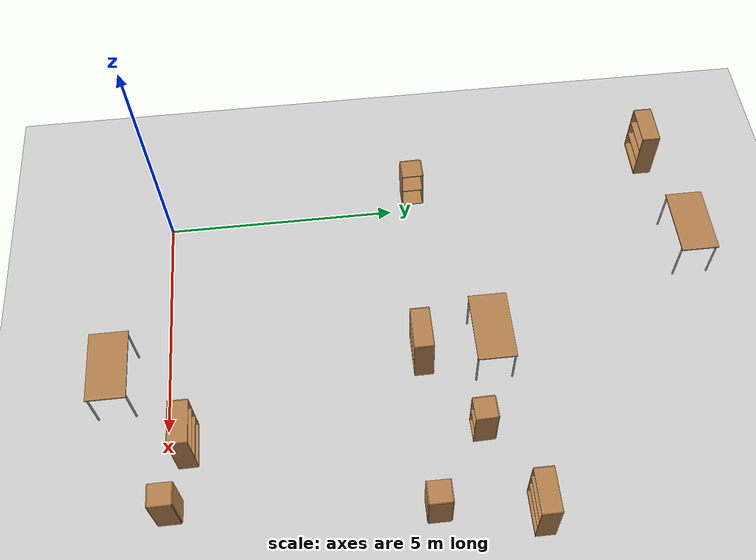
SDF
<sdf version="1.7">
 <world name="default">
  <model name="ground_plane">
   <static>1</static>
   <link name="link">
    <collision name="collision">
     <geometry><plane><normal>0 0 1</normal><size>100 100</size></plane></geometry>
     <surface><friction><ode><mu>100</mu><mu2>50</mu2></ode></friction></surface>
    </collision>
    <visual name="visual">
     <cast_shadows>0</cast_shadows>
     <geometry><plane><normal>0 0 1</normal><size>100 100</size></plane></geometry>
     <material>
      <script><uri>file://media/materials/scripts/gazebo.material</uri><name>Gazebo/Grey</name></script>
     </material>
    </visual>
   </link>
  </model>
  <model name="bookshelf">
   <static>1</static>
   <link name="link">
    <inertial><mass>1</mass></inertial>
    <collision name="back">
     <pose>0 0.005 0.6 0 -0 0</pose>
     <geometry><box><size>0.9 0.01 1.2</size></box></geometry>
    </collision>
    <visual name="visual1">
     <pose>0 0.005 0.6 0 -0 0</pose>
     <geometry><box><size>0.9 0.01 1.2</size></box></geometry>
     <material>
      <script><uri>file://media/materials/scripts/gazebo.material</uri><name>Gazebo/Wood</name></script>
     </material>
    </visual>
    <collision name="left_side">
     <pose>0.45 -0.195 0.6 0 -0 0</pose>
     <geometry><box><size>0.02 0.4 1.2</size></box></geometry>
    </collision>
    <visual name="visual2">
     <pose>0.45 -0.195 0.6 0 -0 0</pose>
     <geometry><box><size>0.02 0.4 1.2</size></box></geometry>
     <material>
      <script><uri>file://media/materials/scripts/gazebo.material</uri><name>Gazebo/Wood</name></script>
     </material>
    </visual>
    <collision name="right_side">
     <pose>-0.45 -0.195 0.6 0 -0 0</pose>
     <geometry><box><size>0.02 0.4 1.2</size></box></geometry>
    </collision>
    <visual name="visual3">
     <pose>-0.45 -0.195 0.6 0 -0 0</pose>
     <geometry><box><size>0.02 0.4 1.2</size></box></geometry>
     <material>
      <script><uri>file://media/materials/scripts/gazebo.material</uri><name>Gazebo/Wood</name></script>
     </material>
    </visual>
    <collision name="bottom">
     <pose>0 -0.195 0.03 0 -0 0</pose>
     <geometry><box><size>0.88 0.4 0.06</size></box></geometry>
    </collision>
    <visual name="visual4">
     <pose>0 -0.195 0.03 0 -0 0</pose>
     <geometry><box><size>0.88 0.4 0.06</size></box></geometry>
     <material>
      <script><uri>file://media/materials/scripts/gazebo.material</uri><name>Gazebo/Wood</name></script>
     </material>
    </visual>
    <collision name="top">
     <pose>0 -0.195 1.19 0 -0 0</pose>
     <geometry><box><size>0.88 0.4 0.02</size></box></geometry>
    </collision>
    <visual name="visual5">
     <pose>0 -0.195 1.19 0 -0 0</pose>
     <geometry><box><size>0.88 0.4 0.02</size></box></geometry>
     <material>
      <script><uri>file://media/materials/scripts/gazebo.material</uri><name>Gazebo/Wood</name></script>
     </material>
    </visual>
    <collision name="low_shelf">
     <pose>0 -0.195 0.43 0 -0 0</pose>
     <geometry><box><size>0.88 0.4 0.02</size></box></geometry>
    </collision>
    <visual name="visual6">
     <pose>0 -0.195 0.43 0 -0 0</pose>
     <geometry><box><size>0.88 0.4 0.02</size></box></geometry>
     <material>
      <script><uri>file://media/materials/scripts/gazebo.material</uri><name>Gazebo/Wood</name></script>
     </material>
    </visual>
    <collision name="high_shelf">
     <pose>0 -0.195 0.8 0 -0 0</pose>
     <geometry><box><size>0.88 0.4 0.02</size></box></geometry>
    </collision>
    <visual name="visual7">
     <pose>0 -0.195 0.8 0 -0 0</pose>
     <geometry><box><size>0.88 0.4 0.02</size></box></geometry>
     <material>
      <script><uri>file://media/materials/scripts/gazebo.material</uri><name>Gazebo/Wood</name></script>
     </material>
    </visual>
   </link>
   <pose>7.47775 7.35684 0 0 -0 0</pose>
  </model>
  <model name="cabinet_0">
   <static>1</static>
   <link name="cabinet_bottom_plate">
    <inertial>
     <pose>0 0 -1 0 -0 0</pose>
     <inertia><ixx>2.05</ixx><ixy>0</ixy><ixz>0</ixz><iyy>2.05</iyy><iyz>0</iyz><izz>2.05</izz></inertia>
     <mass>25</mass>
    </inertial>
    <collision name="cabinet_bottom_plate_geom">
     <pose>0 0 0.01 0 -0 0</pose>
     <geometry><box><size>0.45 0.45 0.02</size></box></geometry>
    </collision>
    <visual name="cabinet_bottom_plate_geom_visual">
     <pose>0 0 0.01 0 -0 0</pose>
     <geometry><box><size>0.45 0.45 0.02</size></box></geometry>
     <material>
      <script><uri>file://media/materials/scripts/gazebo.material</uri><name>Gazebo/Wood</name></script>
     </material>
    </visual>
    <collision name="cabinet_bottom_plate_geom_cabinet_back_plate">
     <pose>0.235 0 0.51 0 -0 0</pose>
     <geometry><box><size>0.02 0.45 1.02</size></box></geometry>
    </collision>
    <visual name="cabinet_bottom_plate_geom_cabinet_back_plate_visual">
     <pose>0.235 0 0.51 0 -0 0</pose>
     <geometry><box><size>0.02 0.45 1.02</size></box></geometry>
     <material>
      <script><uri>file://media/materials/scripts/gazebo.material</uri><name>Gazebo/Wood</name></script>
     </material>
    </visual>
    <collision name="cabinet_bottom_plate_geom_cabinet_left_plate">
     <pose>0 0.235 0.51 0 -0 0</pose>
     <geometry><box><size>0.45 0.02 1.02</size></box></geometry>
    </collision>
    <visual name="cabinet_bottom_plate_geom_cabinet_left_plate_visual">
     <pose>0 0.235 0.51 0 -0 0</pose>
     <geometry><box><size>0.45 0.02 1.02</size></box></geometry>
     <material>
      <script><uri>file://media/materials/scripts/gazebo.material</uri><name>Gazebo/Wood</name></script>
     </material>
    </visual>
    <collision name="cabinet_bottom_plate_geom_cabinet_middle_plate">
     <pose>0 0 0.51 0 -0 0</pose>
     <geometry><box><size>0.45 0.45 0.02</size></box></geometry>
    </collision>
    <visual name="cabinet_bottom_plate_geom_cabinet_middle_plate_visual">
     <pose>0 0 0.51 0 -0 0</pose>
     <geometry><box><size>0.45 0.45 0.02</size></box></geometry>
     <material>
      <script><uri>file://media/materials/scripts/gazebo.material</uri><name>Gazebo/Wood</name></script>
     </material>
    </visual>
    <collision name="cabinet_bottom_plate_geom_cabinet_right_plate">
     <pose>0 -0.235 0.51 0 -0 0</pose>
     <geometry><box><size>0.45 0.02 1.02</size></box></geometry>
    </collision>
    <visual name="cabinet_bottom_plate_geom_cabinet_right_plate_visual">
     <pose>0 -0.235 0.51 0 -0 0</pose>
     <geometry><box><size>0.45 0.02 1.02</size></box></geometry>
     <material>
      <script><uri>file://media/materials/scripts/gazebo.material</uri><name>Gazebo/Wood</name></script>
     </material>
    </visual>
    <collision name="cabinet_bottom_plate_geom_cabinet_top_plate">
     <pose>0 0 1.01 0 -0 0</pose>
     <geometry><box><size>0.45 0.45 0.02</size></box></geometry>
    </collision>
    <visual name="cabinet_bottom_plate_geom_cabinet_top_plate_visual">
     <pose>0 0 1.01 0 -0 0</pose>
     <geometry><box><size>0.45 0.45 0.02</size></box></geometry>
     <material>
      <script><uri>file://media/materials/scripts/gazebo.material</uri><name>Gazebo/Wood</name></script>
     </material>
    </visual>
   </link>
   <pose>7.21592 5.20257 0 0 -0 0</pose>
  </model>
  <model name="bookshelf_2">
   <static>1</static>
   <link name="link">
    <inertial><mass>1</mass></inertial>
    <collision name="back">
     <pose>0 0.005 0.6 0 -0 0</pose>
     <geometry><box><size>0.9 0.01 1.2</size></box></geometry>
    </collision>
    <visual name="visual1">
     <pose>0 0.005 0.6 0 -0 0</pose>
     <geometry><box><size>0.9 0.01 1.2</size></box></geometry>
     <material>
      <script><uri>file://media/materials/scripts/gazebo.material</uri><name>Gazebo/Wood</name></script>
     </material>
    </visual>
    <collision name="left_side">
     <pose>0.45 -0.195 0.6 0 -0 0</pose>
     <geometry><box><size>0.02 0.4 1.2</size></box></geometry>
    </collision>
    <visual name="visual2">
     <pose>0.45 -0.195 0.6 0 -0 0</pose>
     <geometry><box><size>0.02 0.4 1.2</size></box></geometry>
     <material>
      <script><uri>file://media/materials/scripts/gazebo.material</uri><name>Gazebo/Wood</name></script>
     </material>
    </visual>
    <collision name="right_side">
     <pose>-0.45 -0.195 0.6 0 -0 0</pose>
     <geometry><box><size>0.02 0.4 1.2</size></box></geometry>
    </collision>
    <visual name="visual3">
     <pose>-0.45 -0.195 0.6 0 -0 0</pose>
     <geometry><box><size>0.02 0.4 1.2</size></box></geometry>
     <material>
      <script><uri>file://media/materials/scripts/gazebo.material</uri><name>Gazebo/Wood</name></script>
     </material>
    </visual>
    <collision name="bottom">
     <pose>0 -0.195 0.03 0 -0 0</pose>
     <geometry><box><size>0.88 0.4 0.06</size></box></geometry>
    </collision>
    <visual name="visual4">
     <pose>0 -0.195 0.03 0 -0 0</pose>
     <geometry><box><size>0.88 0.4 0.06</size></box></geometry>
     <material>
      <script><uri>file://media/materials/scripts/gazebo.material</uri><name>Gazebo/Wood</name></script>
     </material>
    </visual>
    <collision name="top">
     <pose>0 -0.195 1.19 0 -0 0</pose>
     <geometry><box><size>0.88 0.4 0.02</size></box></geometry>
    </collision>
    <visual name="visual5">
     <pose>0 -0.195 1.19 0 -0 0</pose>
     <geometry><box><size>0.88 0.4 0.02</size></box></geometry>
     <material>
      <script><uri>file://media/materials/scripts/gazebo.material</uri><name>Gazebo/Wood</name></script>
     </material>
    </visual>
    <collision name="low_shelf">
     <pose>0 -0.195 0.43 0 -0 0</pose>
     <geometry><box><size>0.88 0.4 0.02</size></box></geometry>
    </collision>
    <visual name="visual6">
     <pose>0 -0.195 0.43 0 -0 0</pose>
     <geometry><box><size>0.88 0.4 0.02</size></box></geometry>
     <material>
      <script><uri>file://media/materials/scripts/gazebo.material</uri><name>Gazebo/Wood</name></script>
     </material>
    </visual>
    <collision name="high_shelf">
     <pose>0 -0.195 0.8 0 -0 0</pose>
     <geometry><box><size>0.88 0.4 0.02</size></box></geometry>
    </collision>
    <visual name="visual7">
     <pose>0 -0.195 0.8 0 -0 0</pose>
     <geometry><box><size>0.88 0.4 0.02</size></box></geometry>
     <material>
      <script><uri>file://media/materials/scripts/gazebo.material</uri><name>Gazebo/Wood</name></script>
     </material>
    </visual>
   </link>
   <pose>-0.951179 11.2244 0 0 -0 0</pose>
  </model>
  <model name="table_1">
   <static>1</static>
   <link name="link">
    <collision name="surface">
     <pose>0 0 1 0 -0 0</pose>
     <geometry><box><size>1.5 0.8 0.03</size></box></geometry>
     <surface><friction><ode><mu>0.6</mu><mu2>0.6</mu2></ode></friction></surface>
    </collision>
    <visual name="visual1">
     <pose>0 0 1 0 -0 0</pose>
     <geometry><box><size>1.5 0.8 0.03</size></box></geometry>
     <material>
      <script><uri>file://media/materials/scripts/gazebo.material</uri><name>Gazebo/Wood</name></script>
     </material>
    </visual>
    <collision name="front_left_leg">
     <pose>0.68 0.38 0.5 0 -0 0</pose>
     <geometry><cylinder><radius>0.02</radius><length>1</length></cylinder></geometry>
    </collision>
    <visual name="front_left_leg">
     <pose>0.68 0.38 0.5 0 -0 0</pose>
     <geometry><cylinder><radius>0.02</radius><length>1</length></cylinder></geometry>
     <material>
      <script><uri>file://media/materials/scripts/gazebo.material</uri><name>Gazebo/Grey</name></script>
     </material>
    </visual>
    <collision name="front_right_leg">
     <pose>0.68 -0.38 0.5 0 -0 0</pose>
     <geometry><cylinder><radius>0.02</radius><length>1</length></cylinder></geometry>
    </collision>
    <visual name="front_right_leg">
     <pose>0.68 -0.38 0.5 0 -0 0</pose>
     <geometry><cylinder><radius>0.02</radius><length>1</length></cylinder></geometry>
     <material>
      <script><uri>file://media/materials/scripts/gazebo.material</uri><name>Gazebo/Grey</name></script>
     </material>
    </visual>
    <collision name="back_right_leg">
     <pose>-0.68 -0.38 0.5 0 -0 0</pose>
     <geometry><cylinder><radius>0.02</radius><length>1</length></cylinder></geometry>
    </collision>
    <visual name="back_right_leg">
     <pose>-0.68 -0.38 0.5 0 -0 0</pose>
     <geometry><cylinder><radius>0.02</radius><length>1</length></cylinder></geometry>
     <material>
      <script><uri>file://media/materials/scripts/gazebo.material</uri><name>Gazebo/Grey</name></script>
     </material>
    </visual>
    <collision name="back_left_leg">
     <pose>-0.68 0.38 0.5 0 -0 0</pose>
     <geometry><cylinder><radius>0.02</radius><length>1</length></cylinder></geometry>
    </collision>
    <visual name="back_left_leg">
     <pose>-0.68 0.38 0.5 0 -0 0</pose>
     <geometry><cylinder><radius>0.02</radius><length>1</length></cylinder></geometry>
     <material>
      <script><uri>file://media/materials/scripts/gazebo.material</uri><name>Gazebo/Grey</name></script>
     </material>
    </visual>
   </link>
   <pose>1.69778 11.4322 0 0 -0 0</pose>
  </model>
  <model name="bookshelf_3">
   <static>1</static>
   <link name="link">
    <inertial><mass>1</mass></inertial>
    <collision name="back">
     <pose>0 0.005 0.6 0 -0 0</pose>
     <geometry><box><size>0.9 0.01 1.2</size></box></geometry>
    </collision>
    <visual name="visual1">
     <pose>0 0.005 0.6 0 -0 0</pose>
     <geometry><box><size>0.9 0.01 1.2</size></box></geometry>
     <material>
      <script><uri>file://media/materials/scripts/gazebo.material</uri><name>Gazebo/Wood</name></script>
     </material>
    </visual>
    <collision name="left_side">
     <pose>0.45 -0.195 0.6 0 -0 0</pose>
     <geometry><box><size>0.02 0.4 1.2</size></box></geometry>
    </collision>
    <visual name="visual2">
     <pose>0.45 -0.195 0.6 0 -0 0</pose>
     <geometry><box><size>0.02 0.4 1.2</size></box></geometry>
     <material>
      <script><uri>file://media/materials/scripts/gazebo.material</uri><name>Gazebo/Wood</name></script>
     </material>
    </visual>
    <collision name="right_side">
     <pose>-0.45 -0.195 0.6 0 -0 0</pose>
     <geometry><box><size>0.02 0.4 1.2</size></box></geometry>
    </collision>
    <visual name="visual3">
     <pose>-0.45 -0.195 0.6 0 -0 0</pose>
     <geometry><box><size>0.02 0.4 1.2</size></box></geometry>
     <material>
      <script><uri>file://media/materials/scripts/gazebo.material</uri><name>Gazebo/Wood</name></script>
     </material>
    </visual>
    <collision name="bottom">
     <pose>0 -0.195 0.03 0 -0 0</pose>
     <geometry><box><size>0.88 0.4 0.06</size></box></geometry>
    </collision>
    <visual name="visual4">
     <pose>0 -0.195 0.03 0 -0 0</pose>
     <geometry><box><size>0.88 0.4 0.06</size></box></geometry>
     <material>
      <script><uri>file://media/materials/scripts/gazebo.material</uri><name>Gazebo/Wood</name></script>
     </material>
    </visual>
    <collision name="top">
     <pose>0 -0.195 1.19 0 -0 0</pose>
     <geometry><box><size>0.88 0.4 0.02</size></box></geometry>
    </collision>
    <visual name="visual5">
     <pose>0 -0.195 1.19 0 -0 0</pose>
     <geometry><box><size>0.88 0.4 0.02</size></box></geometry>
     <material>
      <script><uri>file://media/materials/scripts/gazebo.material</uri><name>Gazebo/Wood</name></script>
     </material>
    </visual>
    <collision name="low_shelf">
     <pose>0 -0.195 0.43 0 -0 0</pose>
     <geometry><box><size>0.88 0.4 0.02</size></box></geometry>
    </collision>
    <visual name="visual6">
     <pose>0 -0.195 0.43 0 -0 0</pose>
     <geometry><box><size>0.88 0.4 0.02</size></box></geometry>
     <material>
      <script><uri>file://media/materials/scripts/gazebo.material</uri><name>Gazebo/Wood</name></script>
     </material>
    </visual>
    <collision name="high_shelf">
     <pose>0 -0.195 0.8 0 -0 0</pose>
     <geometry><box><size>0.88 0.4 0.02</size></box></geometry>
    </collision>
    <visual name="visual7">
     <pose>0 -0.195 0.8 0 -0 0</pose>
     <geometry><box><size>0.88 0.4 0.02</size></box></geometry>
     <material>
      <script><uri>file://media/materials/scripts/gazebo.material</uri><name>Gazebo/Wood</name></script>
     </material>
    </visual>
   </link>
   <pose>3.81368 5.46157 0 0 -0 0</pose>
  </model>
  <model name="cabinet_2">
   <static>1</static>
   <link name="cabinet_bottom_plate">
    <inertial>
     <pose>0 0 -1 0 -0 0</pose>
     <inertia><ixx>2.05</ixx><ixy>0</ixy><ixz>0</ixz><iyy>2.05</iyy><iyz>0</iyz><izz>2.05</izz></inertia>
     <mass>25</mass>
    </inertial>
    <collision name="cabinet_bottom_plate_geom">
     <pose>0 0 0.01 0 -0 0</pose>
     <geometry><box><size>0.45 0.45 0.02</size></box></geometry>
    </collision>
    <visual name="cabinet_bottom_plate_geom_visual">
     <pose>0 0 0.01 0 -0 0</pose>
     <geometry><box><size>0.45 0.45 0.02</size></box></geometry>
     <material>
      <script><uri>file://media/materials/scripts/gazebo.material</uri><name>Gazebo/Wood</name></script>
     </material>
    </visual>
    <collision name="cabinet_bottom_plate_geom_cabinet_back_plate">
     <pose>0.235 0 0.51 0 -0 0</pose>
     <geometry><box><size>0.02 0.45 1.02</size></box></geometry>
    </collision>
    <visual name="cabinet_bottom_plate_geom_cabinet_back_plate_visual">
     <pose>0.235 0 0.51 0 -0 0</pose>
     <geometry><box><size>0.02 0.45 1.02</size></box></geometry>
     <material>
      <script><uri>file://media/materials/scripts/gazebo.material</uri><name>Gazebo/Wood</name></script>
     </material>
    </visual>
    <collision name="cabinet_bottom_plate_geom_cabinet_left_plate">
     <pose>0 0.235 0.51 0 -0 0</pose>
     <geometry><box><size>0.45 0.02 1.02</size></box></geometry>
    </collision>
    <visual name="cabinet_bottom_plate_geom_cabinet_left_plate_visual">
     <pose>0 0.235 0.51 0 -0 0</pose>
     <geometry><box><size>0.45 0.02 1.02</size></box></geometry>
     <material>
      <script><uri>file://media/materials/scripts/gazebo.material</uri><name>Gazebo/Wood</name></script>
     </material>
    </visual>
    <collision name="cabinet_bottom_plate_geom_cabinet_middle_plate">
     <pose>0 0 0.51 0 -0 0</pose>
     <geometry><box><size>0.45 0.45 0.02</size></box></geometry>
    </collision>
    <visual name="cabinet_bottom_plate_geom_cabinet_middle_plate_visual">
     <pose>0 0 0.51 0 -0 0</pose>
     <geometry><box><size>0.45 0.45 0.02</size></box></geometry>
     <material>
      <script><uri>file://media/materials/scripts/gazebo.material</uri><name>Gazebo/Wood</name></script>
     </material>
    </visual>
    <collision name="cabinet_bottom_plate_geom_cabinet_right_plate">
     <pose>0 -0.235 0.51 0 -0 0</pose>
     <geometry><box><size>0.45 0.02 1.02</size></box></geometry>
    </collision>
    <visual name="cabinet_bottom_plate_geom_cabinet_right_plate_visual">
     <pose>0 -0.235 0.51 0 -0 0</pose>
     <geometry><box><size>0.45 0.02 1.02</size></box></geometry>
     <material>
      <script><uri>file://media/materials/scripts/gazebo.material</uri><name>Gazebo/Wood</name></script>
     </material>
    </visual>
    <collision name="cabinet_bottom_plate_geom_cabinet_top_plate">
     <pose>0 0 1.01 0 -0 0</pose>
     <geometry><box><size>0.45 0.45 0.02</size></box></geometry>
    </collision>
    <visual name="cabinet_bottom_plate_geom_cabinet_top_plate_visual">
     <pose>0 0 1.01 0 -0 0</pose>
     <geometry><box><size>0.45 0.45 0.02</size></box></geometry>
     <material>
      <script><uri>file://media/materials/scripts/gazebo.material</uri><name>Gazebo/Wood</name></script>
     </material>
    </visual>
   </link>
   <pose>5.62956 6.29257 0 0 -0 1.591</pose>
  </model>
  <model name="table_2">
   <static>1</static>
   <link name="link">
    <collision name="surface">
     <pose>0 0 1 0 -0 0</pose>
     <geometry><box><size>1.5 0.8 0.03</size></box></geometry>
     <surface><friction><ode><mu>0.6</mu><mu2>0.6</mu2></ode></friction></surface>
    </collision>
    <visual name="visual1">
     <pose>0 0 1 0 -0 0</pose>
     <geometry><box><size>1.5 0.8 0.03</size></box></geometry>
     <material>
      <script><uri>file://media/materials/scripts/gazebo.material</uri><name>Gazebo/Wood</name></script>
     </material>
    </visual>
    <collision name="front_left_leg">
     <pose>0.68 0.38 0.5 0 -0 0</pose>
     <geometry><cylinder><radius>0.02</radius><length>1</length></cylinder></geometry>
    </collision>
    <visual name="front_left_leg">
     <pose>0.68 0.38 0.5 0 -0 0</pose>
     <geometry><cylinder><radius>0.02</radius><length>1</length></cylinder></geometry>
     <material>
      <script><uri>file://media/materials/scripts/gazebo.material</uri><name>Gazebo/Grey</name></script>
     </material>
    </visual>
    <collision name="front_right_leg">
     <pose>0.68 -0.38 0.5 0 -0 0</pose>
     <geometry><cylinder><radius>0.02</radius><length>1</length></cylinder></geometry>
    </collision>
    <visual name="front_right_leg">
     <pose>0.68 -0.38 0.5 0 -0 0</pose>
     <geometry><cylinder><radius>0.02</radius><length>1</length></cylinder></geometry>
     <material>
      <script><uri>file://media/materials/scripts/gazebo.material</uri><name>Gazebo/Grey</name></script>
     </material>
    </visual>
    <collision name="back_right_leg">
     <pose>-0.68 -0.38 0.5 0 -0 0</pose>
     <geometry><cylinder><radius>0.02</radius><length>1</length></cylinder></geometry>
    </collision>
    <visual name="back_right_leg">
     <pose>-0.68 -0.38 0.5 0 -0 0</pose>
     <geometry><cylinder><radius>0.02</radius><length>1</length></cylinder></geometry>
     <material>
      <script><uri>file://media/materials/scripts/gazebo.material</uri><name>Gazebo/Grey</name></script>
     </material>
    </visual>
    <collision name="back_left_leg">
     <pose>-0.68 0.38 0.5 0 -0 0</pose>
     <geometry><cylinder><radius>0.02</radius><length>1</length></cylinder></geometry>
    </collision>
    <visual name="back_left_leg">
     <pose>-0.68 0.38 0.5 0 -0 0</pose>
     <geometry><cylinder><radius>0.02</radius><length>1</length></cylinder></geometry>
     <material>
      <script><uri>file://media/materials/scripts/gazebo.material</uri><name>Gazebo/Grey</name></script>
     </material>
    </visual>
   </link>
   <pose>3.82604 6.71224 0 0 -0 0</pose>
  </model>
  <model name="cabinet_3">
   <static>1</static>
   <link name="cabinet_bottom_plate">
    <inertial>
     <pose>0 0 -1 0 -0 0</pose>
     <inertia><ixx>2.05</ixx><ixy>0</ixy><ixz>0</ixz><iyy>2.05</iyy><iyz>0</iyz><izz>2.05</izz></inertia>
     <mass>25</mass>
    </inertial>
    <collision name="cabinet_bottom_plate_geom">
     <pose>0 0 0.01 0 -0 0</pose>
     <geometry><box><size>0.45 0.45 0.02</size></box></geometry>
    </collision>
    <visual name="cabinet_bottom_plate_geom_visual">
     <pose>0 0 0.01 0 -0 0</pose>
     <geometry><box><size>0.45 0.45 0.02</size></box></geometry>
     <material>
      <script><uri>file://media/materials/scripts/gazebo.material</uri><name>Gazebo/Wood</name></script>
     </material>
    </visual>
    <collision name="cabinet_bottom_plate_geom_cabinet_back_plate">
     <pose>0.235 0 0.51 0 -0 0</pose>
     <geometry><box><size>0.02 0.45 1.02</size></box></geometry>
    </collision>
    <visual name="cabinet_bottom_plate_geom_cabinet_back_plate_visual">
     <pose>0.235 0 0.51 0 -0 0</pose>
     <geometry><box><size>0.02 0.45 1.02</size></box></geometry>
     <material>
      <script><uri>file://media/materials/scripts/gazebo.material</uri><name>Gazebo/Wood</name></script>
     </material>
    </visual>
    <collision name="cabinet_bottom_plate_geom_cabinet_left_plate">
     <pose>0 0.235 0.51 0 -0 0</pose>
     <geometry><box><size>0.45 0.02 1.02</size></box></geometry>
    </collision>
    <visual name="cabinet_bottom_plate_geom_cabinet_left_plate_visual">
     <pose>0 0.235 0.51 0 -0 0</pose>
     <geometry><box><size>0.45 0.02 1.02</size></box></geometry>
     <material>
      <script><uri>file://media/materials/scripts/gazebo.material</uri><name>Gazebo/Wood</name></script>
     </material>
    </visual>
    <collision name="cabinet_bottom_plate_geom_cabinet_middle_plate">
     <pose>0 0 0.51 0 -0 0</pose>
     <geometry><box><size>0.45 0.45 0.02</size></box></geometry>
    </collision>
    <visual name="cabinet_bottom_plate_geom_cabinet_middle_plate_visual">
     <pose>0 0 0.51 0 -0 0</pose>
     <geometry><box><size>0.45 0.45 0.02</size></box></geometry>
     <material>
      <script><uri>file://media/materials/scripts/gazebo.material</uri><name>Gazebo/Wood</name></script>
     </material>
    </visual>
    <collision name="cabinet_bottom_plate_geom_cabinet_right_plate">
     <pose>0 -0.235 0.51 0 -0 0</pose>
     <geometry><box><size>0.45 0.02 1.02</size></box></geometry>
    </collision>
    <visual name="cabinet_bottom_plate_geom_cabinet_right_plate_visual">
     <pose>0 -0.235 0.51 0 -0 0</pose>
     <geometry><box><size>0.45 0.02 1.02</size></box></geometry>
     <material>
      <script><uri>file://media/materials/scripts/gazebo.material</uri><name>Gazebo/Wood</name></script>
     </material>
    </visual>
    <collision name="cabinet_bottom_plate_geom_cabinet_top_plate">
     <pose>0 0 1.01 0 -0 0</pose>
     <geometry><box><size>0.45 0.45 0.02</size></box></geometry>
    </collision>
    <visual name="cabinet_bottom_plate_geom_cabinet_top_plate_visual">
     <pose>0 0 1.01 0 -0 0</pose>
     <geometry><box><size>0.45 0.45 0.02</size></box></geometry>
     <material>
      <script><uri>file://media/materials/scripts/gazebo.material</uri><name>Gazebo/Wood</name></script>
     </material>
    </visual>
   </link>
   <pose>6.69416 0.053195 0 0 -0 0</pose>
  </model>
  <model name="bookshelf_4">
   <static>1</static>
   <link name="link">
    <inertial><mass>1</mass></inertial>
    <collision name="back">
     <pose>0 0.005 0.6 0 -0 0</pose>
     <geometry><box><size>0.9 0.01 1.2</size></box></geometry>
    </collision>
    <visual name="visual1">
     <pose>0 0.005 0.6 0 -0 0</pose>
     <geometry><box><size>0.9 0.01 1.2</size></box></geometry>
     <material>
      <script><uri>file://media/materials/scripts/gazebo.material</uri><name>Gazebo/Wood</name></script>
     </material>
    </visual>
    <collision name="left_side">
     <pose>0.45 -0.195 0.6 0 -0 0</pose>
     <geometry><box><size>0.02 0.4 1.2</size></box></geometry>
    </collision>
    <visual name="visual2">
     <pose>0.45 -0.195 0.6 0 -0 0</pose>
     <geometry><box><size>0.02 0.4 1.2</size></box></geometry>
     <material>
      <script><uri>file://media/materials/scripts/gazebo.material</uri><name>Gazebo/Wood</name></script>
     </material>
    </visual>
    <collision name="right_side">
     <pose>-0.45 -0.195 0.6 0 -0 0</pose>
     <geometry><box><size>0.02 0.4 1.2</size></box></geometry>
    </collision>
    <visual name="visual3">
     <pose>-0.45 -0.195 0.6 0 -0 0</pose>
     <geometry><box><size>0.02 0.4 1.2</size></box></geometry>
     <material>
      <script><uri>file://media/materials/scripts/gazebo.material</uri><name>Gazebo/Wood</name></script>
     </material>
    </visual>
    <collision name="bottom">
     <pose>0 -0.195 0.03 0 -0 0</pose>
     <geometry><box><size>0.88 0.4 0.06</size></box></geometry>
    </collision>
    <visual name="visual4">
     <pose>0 -0.195 0.03 0 -0 0</pose>
     <geometry><box><size>0.88 0.4 0.06</size></box></geometry>
     <material>
      <script><uri>file://media/materials/scripts/gazebo.material</uri><name>Gazebo/Wood</name></script>
     </material>
    </visual>
    <collision name="top">
     <pose>0 -0.195 1.19 0 -0 0</pose>
     <geometry><box><size>0.88 0.4 0.02</size></box></geometry>
    </collision>
    <visual name="visual5">
     <pose>0 -0.195 1.19 0 -0 0</pose>
     <geometry><box><size>0.88 0.4 0.02</size></box></geometry>
     <material>
      <script><uri>file://media/materials/scripts/gazebo.material</uri><name>Gazebo/Wood</name></script>
     </material>
    </visual>
    <collision name="low_shelf">
     <pose>0 -0.195 0.43 0 -0 0</pose>
     <geometry><box><size>0.88 0.4 0.02</size></box></geometry>
    </collision>
    <visual name="visual6">
     <pose>0 -0.195 0.43 0 -0 0</pose>
     <geometry><box><size>0.88 0.4 0.02</size></box></geometry>
     <material>
      <script><uri>file://media/materials/scripts/gazebo.material</uri><name>Gazebo/Wood</name></script>
     </material>
    </visual>
    <collision name="high_shelf">
     <pose>0 -0.195 0.8 0 -0 0</pose>
     <geometry><box><size>0.88 0.4 0.02</size></box></geometry>
    </collision>
    <visual name="visual7">
     <pose>0 -0.195 0.8 0 -0 0</pose>
     <geometry><box><size>0.88 0.4 0.02</size></box></geometry>
     <material>
      <script><uri>file://media/materials/scripts/gazebo.material</uri><name>Gazebo/Wood</name></script>
     </material>
    </visual>
   </link>
   <pose>5.34861 0.205713 0 0 0 -3.14076</pose>
  </model>
  <model name="table_3">
   <static>1</static>
   <link name="link">
    <collision name="surface">
     <pose>0 0 1 0 -0 0</pose>
     <geometry><box><size>1.5 0.8 0.03</size></box></geometry>
     <surface><friction><ode><mu>0.6</mu><mu2>0.6</mu2></ode></friction></surface>
    </collision>
    <visual name="visual1">
     <pose>0 0 1 0 -0 0</pose>
     <geometry><box><size>1.5 0.8 0.03</size></box></geometry>
     <material>
      <script><uri>file://media/materials/scripts/gazebo.material</uri><name>Gazebo/Wood</name></script>
     </material>
    </visual>
    <collision name="front_left_leg">
     <pose>0.68 0.38 0.5 0 -0 0</pose>
     <geometry><cylinder><radius>0.02</radius><length>1</length></cylinder></geometry>
    </collision>
    <visual name="front_left_leg">
     <pose>0.68 0.38 0.5 0 -0 0</pose>
     <geometry><cylinder><radius>0.02</radius><length>1</length></cylinder></geometry>
     <material>
      <script><uri>file://media/materials/scripts/gazebo.material</uri><name>Gazebo/Grey</name></script>
     </material>
    </visual>
    <collision name="front_right_leg">
     <pose>0.68 -0.38 0.5 0 -0 0</pose>
     <geometry><cylinder><radius>0.02</radius><length>1</length></cylinder></geometry>
    </collision>
    <visual name="front_right_leg">
     <pose>0.68 -0.38 0.5 0 -0 0</pose>
     <geometry><cylinder><radius>0.02</radius><length>1</length></cylinder></geometry>
     <material>
      <script><uri>file://media/materials/scripts/gazebo.material</uri><name>Gazebo/Grey</name></script>
     </material>
    </visual>
    <collision name="back_right_leg">
     <pose>-0.68 -0.38 0.5 0 -0 0</pose>
     <geometry><cylinder><radius>0.02</radius><length>1</length></cylinder></geometry>
    </collision>
    <visual name="back_right_leg">
     <pose>-0.68 -0.38 0.5 0 -0 0</pose>
     <geometry><cylinder><radius>0.02</radius><length>1</length></cylinder></geometry>
     <material>
      <script><uri>file://media/materials/scripts/gazebo.material</uri><name>Gazebo/Grey</name></script>
     </material>
    </visual>
    <collision name="back_left_leg">
     <pose>-0.68 0.38 0.5 0 -0 0</pose>
     <geometry><cylinder><radius>0.02</radius><length>1</length></cylinder></geometry>
    </collision>
    <visual name="back_left_leg">
     <pose>-0.68 0.38 0.5 0 -0 0</pose>
     <geometry><cylinder><radius>0.02</radius><length>1</length></cylinder></geometry>
     <material>
      <script><uri>file://media/materials/scripts/gazebo.material</uri><name>Gazebo/Grey</name></script>
     </material>
    </visual>
   </link>
   <pose>3.87738 -1.04458 0 0 -0 0</pose>
  </model>
  <model name="cabinet_5">
   <static>1</static>
   <link name="cabinet_bottom_plate">
    <inertial>
     <pose>0 0 -1 0 -0 0</pose>
     <inertia><ixx>2.05</ixx><ixy>0</ixy><ixz>0</ixz><iyy>2.05</iyy><iyz>0</iyz><izz>2.05</izz></inertia>
     <mass>25</mass>
    </inertial>
    <collision name="cabinet_bottom_plate_geom">
     <pose>0 0 0.01 0 -0 0</pose>
     <geometry><box><size>0.45 0.45 0.02</size></box></geometry>
    </collision>
    <visual name="cabinet_bottom_plate_geom_visual">
     <pose>0 0 0.01 0 -0 0</pose>
     <geometry><box><size>0.45 0.45 0.02</size></box></geometry>
     <material>
      <script><uri>file://media/materials/scripts/gazebo.material</uri><name>Gazebo/Wood</name></script>
     </material>
    </visual>
    <collision name="cabinet_bottom_plate_geom_cabinet_back_plate">
     <pose>0.235 0 0.51 0 -0 0</pose>
     <geometry><box><size>0.02 0.45 1.02</size></box></geometry>
    </collision>
    <visual name="cabinet_bottom_plate_geom_cabinet_back_plate_visual">
     <pose>0.235 0 0.51 0 -0 0</pose>
     <geometry><box><size>0.02 0.45 1.02</size></box></geometry>
     <material>
      <script><uri>file://media/materials/scripts/gazebo.material</uri><name>Gazebo/Wood</name></script>
     </material>
    </visual>
    <collision name="cabinet_bottom_plate_geom_cabinet_left_plate">
     <pose>0 0.235 0.51 0 -0 0</pose>
     <geometry><box><size>0.45 0.02 1.02</size></box></geometry>
    </collision>
    <visual name="cabinet_bottom_plate_geom_cabinet_left_plate_visual">
     <pose>0 0.235 0.51 0 -0 0</pose>
     <geometry><box><size>0.45 0.02 1.02</size></box></geometry>
     <material>
      <script><uri>file://media/materials/scripts/gazebo.material</uri><name>Gazebo/Wood</name></script>
     </material>
    </visual>
    <collision name="cabinet_bottom_plate_geom_cabinet_middle_plate">
     <pose>0 0 0.51 0 -0 0</pose>
     <geometry><box><size>0.45 0.45 0.02</size></box></geometry>
    </collision>
    <visual name="cabinet_bottom_plate_geom_cabinet_middle_plate_visual">
     <pose>0 0 0.51 0 -0 0</pose>
     <geometry><box><size>0.45 0.45 0.02</size></box></geometry>
     <material>
      <script><uri>file://media/materials/scripts/gazebo.material</uri><name>Gazebo/Wood</name></script>
     </material>
    </visual>
    <collision name="cabinet_bottom_plate_geom_cabinet_right_plate">
     <pose>0 -0.235 0.51 0 -0 0</pose>
     <geometry><box><size>0.45 0.02 1.02</size></box></geometry>
    </collision>
    <visual name="cabinet_bottom_plate_geom_cabinet_right_plate_visual">
     <pose>0 -0.235 0.51 0 -0 0</pose>
     <geometry><box><size>0.45 0.02 1.02</size></box></geometry>
     <material>
      <script><uri>file://media/materials/scripts/gazebo.material</uri><name>Gazebo/Wood</name></script>
     </material>
    </visual>
    <collision name="cabinet_bottom_plate_geom_cabinet_top_plate">
     <pose>0 0 1.01 0 -0 0</pose>
     <geometry><box><size>0.45 0.45 0.02</size></box></geometry>
    </collision>
    <visual name="cabinet_bottom_plate_geom_cabinet_top_plate_visual">
     <pose>0 0 1.01 0 -0 0</pose>
     <geometry><box><size>0.45 0.45 0.02</size></box></geometry>
     <material>
      <script><uri>file://media/materials/scripts/gazebo.material</uri><name>Gazebo/Wood</name></script>
     </material>
    </visual>
   </link>
   <pose>-0.40117 5.51994 0 0 0 -3.12093</pose>
  </model>
 </world>
</sdf>
